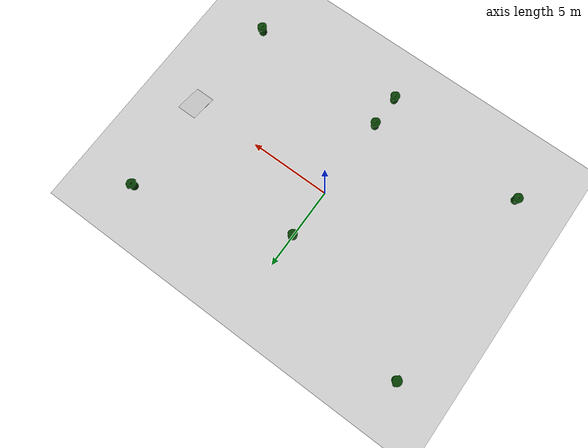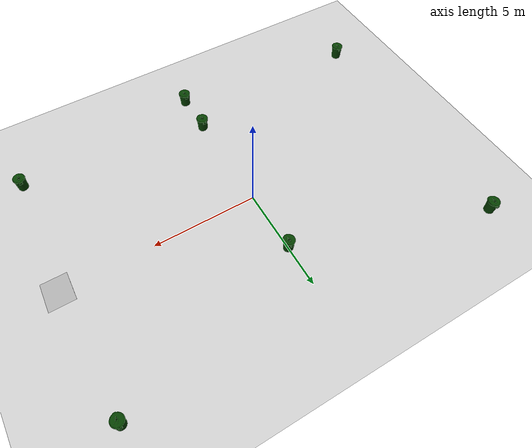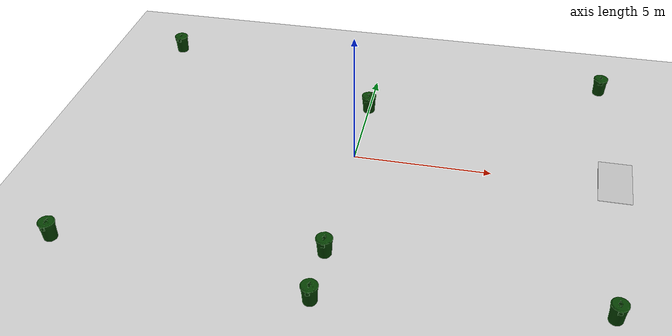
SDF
<sdf version="1.7">
 <world name="default">
  <light name="sun" type="directional">
   <pose>0 0 10 0 -0 0</pose>
   <diffuse>0.8 0.8 0.8 1</diffuse>
   <specular>0.2 0.2 0.2 1</specular>
   <attenuation>
    <range>1000</range>
    <constant>0.9</constant>
    <linear>0.01</linear>
    <quadratic>0.001</quadratic>
   </attenuation>
   <direction>-0.5 0.1 -0.9</direction>
   <spot><inner_angle>0</inner_angle><outer_angle>0</outer_angle><falloff>0</falloff></spot>
  </light>
  <model name="ground_plane">
   <static>1</static>
   <link name="link">
    <collision name="collision">
     <geometry><plane><normal>0 0 1</normal><size>100 100</size></plane></geometry>
     <surface><friction><ode><mu>100</mu><mu2>50</mu2></ode></friction></surface>
    </collision>
    <visual name="visual">
     <cast_shadows>0</cast_shadows>
     <geometry><plane><normal>0 0 1</normal><size>100 100</size></plane></geometry>
     <material>
      <script><uri>file://media/materials/scripts/gazebo.material</uri><name>Gazebo/Grey</name></script>
     </material>
    </visual>
   </link>
  </model>
  <gravity>0 0 -9.8</gravity>
  <magnetic_field>6e-06 2.3e-05 -4.2e-05</magnetic_field>
  <atmosphere type="adiabatic"/>
  <physics type="ode">
   <max_step_size>0.001</max_step_size>
   <real_time_factor>1</real_time_factor>
   <real_time_update_rate>1000</real_time_update_rate>
  </physics>
  <scene><ambient>0.4 0.4 0.4 1</ambient><background>0.7 0.7 0.7 1</background><shadows>1</shadows></scene>
  <spherical_coordinates>
   <surface_model>EARTH_WGS84</surface_model>
   <latitude_deg>35.0805</latitude_deg>
   <longitude_deg>-92.4545</longitude_deg>
   <elevation>95.1</elevation>
   <heading_deg>0</heading_deg>
  </spherical_coordinates>
  <model name="first_2015_trash_can">
   <link name="link">
    <inertial>
     <pose>0 0 0.3683 0 -0 0</pose>
     <mass>4.83076</mass>
     <inertia>
      <ixx>0.281534</ixx>
      <ixy>0</ixy>
      <ixz>0</ixz>
      <iyy>0.281534</iyy>
      <iyz>0</iyz>
      <izz>0.126223</izz>
     </inertia>
    </inertial>
    <visual name="visual">
     <geometry><mesh><uri>model://first_2015_trash_can/meshes/trash_can.dae</uri></mesh></geometry>
    </visual>
    <collision name="collision">
     <geometry><mesh><uri>model://first_2015_trash_can/meshes/trash_can.dae</uri></mesh></geometry>
    </collision>
   </link>
   <pose>-8.96776 -5.98898 -5e-06 1.3e-05 1.9e-05 -0.002699</pose>
  </model>
  <model name="first_2015_trash_can_0">
   <link name="link">
    <inertial>
     <pose>0 0 0.3683 0 -0 0</pose>
     <mass>4.83076</mass>
     <inertia>
      <ixx>0.281534</ixx>
      <ixy>0</ixy>
      <ixz>0</ixz>
      <iyy>0.281534</iyy>
      <iyz>0</iyz>
      <izz>0.126223</izz>
     </inertia>
    </inertial>
    <visual name="visual">
     <geometry><mesh><uri>model://first_2015_trash_can/meshes/trash_can.dae</uri></mesh></geometry>
    </visual>
    <collision name="collision">
     <geometry><mesh><uri>model://first_2015_trash_can/meshes/trash_can.dae</uri></mesh></geometry>
    </collision>
   </link>
   <pose>8.9773 -5.98786 -3e-06 1e-06 8e-06 -0.002486</pose>
  </model>
  <model name="first_2015_trash_can_1">
   <link name="link">
    <inertial>
     <pose>0 0 0.3683 0 -0 0</pose>
     <mass>4.83076</mass>
     <inertia>
      <ixx>0.281534</ixx>
      <ixy>0</ixy>
      <ixz>0</ixz>
      <iyy>0.281534</iyy>
      <iyz>0</iyz>
      <izz>0.126223</izz>
     </inertia>
    </inertial>
    <visual name="visual">
     <geometry><mesh><uri>model://first_2015_trash_can/meshes/trash_can.dae</uri></mesh></geometry>
    </visual>
    <collision name="collision">
     <geometry><mesh><uri>model://first_2015_trash_can/meshes/trash_can.dae</uri></mesh></geometry>
    </collision>
   </link>
   <pose>9.03631 6.02863 -5e-06 -1.9e-05 1.6e-05 -0.00265</pose>
  </model>
  <model name="first_2015_trash_can_2">
   <link name="link">
    <inertial>
     <pose>0 0 0.3683 0 -0 0</pose>
     <mass>4.83076</mass>
     <inertia>
      <ixx>0.281534</ixx>
      <ixy>0</ixy>
      <ixz>0</ixz>
      <iyy>0.281534</iyy>
      <iyz>0</iyz>
      <izz>0.126223</izz>
     </inertia>
    </inertial>
    <visual name="visual">
     <geometry><mesh><uri>model://first_2015_trash_can/meshes/trash_can.dae</uri></mesh></geometry>
    </visual>
    <collision name="collision">
     <geometry><mesh><uri>model://first_2015_trash_can/meshes/trash_can.dae</uri></mesh></geometry>
    </collision>
   </link>
   <pose>-8.96533 6.00487 -1.1e-05 0 1.5e-05 -0.002703</pose>
  </model>
  <model name="first_2015_trash_can_3">
   <link name="link">
    <inertial>
     <pose>0 0 0.3683 0 -0 0</pose>
     <mass>4.83076</mass>
     <inertia>
      <ixx>0.281534</ixx>
      <ixy>0</ixy>
      <ixz>0</ixz>
      <iyy>0.281534</iyy>
      <iyz>0</iyz>
      <izz>0.126223</izz>
     </inertia>
    </inertial>
    <visual name="visual">
     <geometry><mesh><uri>model://first_2015_trash_can/meshes/trash_can.dae</uri></mesh></geometry>
    </visual>
    <collision name="collision">
     <geometry><mesh><uri>model://first_2015_trash_can/meshes/trash_can.dae</uri></mesh></geometry>
    </collision>
   </link>
   <pose>0.006602 -7.00009 -4e-06 -6e-06 1e-06 -0.002533</pose>
  </model>
  <model name="first_2015_trash_can_4">
   <link name="link">
    <inertial>
     <pose>0 0 0.3683 0 -0 0</pose>
     <mass>4.83076</mass>
     <inertia>
      <ixx>0.281534</ixx>
      <ixy>0</ixy>
      <ixz>0</ixz>
      <iyy>0.281534</iyy>
      <iyz>0</iyz>
      <izz>0.126223</izz>
     </inertia>
    </inertial>
    <visual name="visual">
     <geometry><mesh><uri>model://first_2015_trash_can/meshes/trash_can.dae</uri></mesh></geometry>
    </visual>
    <collision name="collision">
     <geometry><mesh><uri>model://first_2015_trash_can/meshes/trash_can.dae</uri></mesh></geometry>
    </collision>
   </link>
   <pose>0.007351 -5.00429 -2e-06 3e-06 8e-06 -0.002498</pose>
  </model>
  <model name="first_2015_trash_can_5">
   <link name="link">
    <inertial>
     <pose>0 0 0.3683 0 -0 0</pose>
     <mass>4.83076</mass>
     <inertia>
      <ixx>0.281534</ixx>
      <ixy>0</ixy>
      <ixz>0</ixz>
      <iyy>0.281534</iyy>
      <iyz>0</iyz>
      <izz>0.126223</izz>
     </inertia>
    </inertial>
    <visual name="visual">
     <geometry><mesh><uri>model://first_2015_trash_can/meshes/trash_can.dae</uri></mesh></geometry>
    </visual>
    <collision name="collision">
     <geometry><mesh><uri>model://first_2015_trash_can/meshes/trash_can.dae</uri></mesh></geometry>
    </collision>
   </link>
   <pose>-0.009367 3.02222 2e-06 -3.3e-05 -1.2e-05 -0.0023</pose>
  </model>
  <model name="nist_simple_ramp_120">
   <static>1</static>
   <link name="nist_simple_ramp_120_link">
    <collision name="collision">
     <geometry>
      <mesh><uri>model://nist_simple_ramp_120/meshes/nist_simple_ramp_120.dae</uri><scale>1 1 1</scale></mesh>
     </geometry>
    </collision>
    <visual name="visual">
     <geometry>
      <mesh><uri>model://nist_simple_ramp_120/meshes/nist_simple_ramp_120.dae</uri><scale>1 1 1</scale></mesh>
     </geometry>
    </visual>
   </link>
   <pose>9.30401 -0.230288 -0.293081 -0.523719 0 0</pose>
  </model>
 </world>
</sdf>
